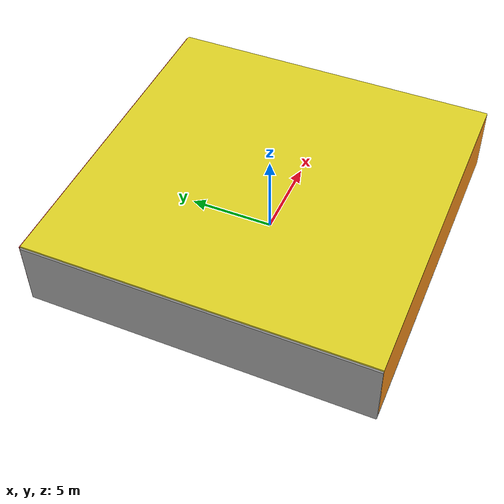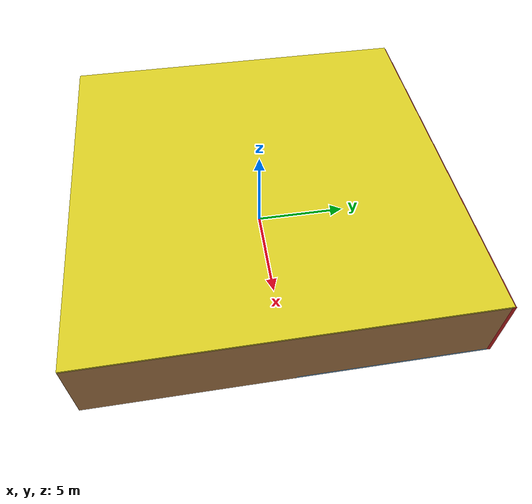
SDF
<sdf version="1.4">
 <world name="default">
  <physics type="ode">
   <max_step_size>0.001</max_step_size>
   <real_time_factor>1</real_time_factor>
   <real_time_update_rate>1000</real_time_update_rate>
   <gravity>0 0 -9.8</gravity>
  </physics>
  <scene><ambient>0.4 0.4 0.4 1</ambient><background>0.7 0.7 0.7 1</background><shadows>1</shadows></scene>
  <model name="Surrounding">
   <static>1</static>
   <link name="Ceiling">
    <collision name="Ceiling_Collision"><geometry><box><size>20 20 0.1</size></box></geometry></collision>
    <visual name="Ceiling_Visual">
     <geometry><box><size>20 20 0.1</size></box></geometry>
     <material>
      <script><uri>file://media/materials/scripts/gazebo.material</uri><name>Gazebo/YellowGlow</name></script>
     </material>
    </visual>
    <pose>0 0 4.05 0 0 0</pose>
   </link>
   <link name="Wall_South">
    <collision name="Wall_South_Collision">
     <geometry><box><size>20 0 4</size></box></geometry>
     <pose>0 0 2 0 -0 0</pose>
    </collision>
    <visual name="Wall_South_Visual">
     <pose>0 0 2 0 -0 0</pose>
     <geometry><box><size>20 0 4</size></box></geometry>
     <material>
      <script><uri>file://media/materials/scripts/gazebo.material</uri><name>Gazebo/Orange</name></script>
     </material>
    </visual>
    <velocity_decay><linear>0</linear><angular>0</angular></velocity_decay>
    <pose>0 -10 0 0 -0 0</pose>
   </link>
   <link name="Wall_East">
    <collision name="Wall_21_Collision">
     <geometry><box><size>20 0 4</size></box></geometry>
     <pose>0 0 2 0 -0 0</pose>
    </collision>
    <visual name="Wall_21_Visual">
     <pose>0 0 2 0 -0 0</pose>
     <geometry><box><size>20 0 4</size></box></geometry>
     <material>
      <script><uri>file://media/materials/scripts/gazebo.material</uri><name>Gazebo/WoodFloor</name></script>
     </material>
    </visual>
    <velocity_decay><linear>0</linear><angular>0</angular></velocity_decay>
    <pose>10 0 0 0 -0 1.5708</pose>
   </link>
   <link name="Wall_North">
    <collision name="Wall_22_Collision">
     <geometry><box><size>20 0.2 4</size></box></geometry>
     <pose>0 0 2 0 -0 0</pose>
    </collision>
    <visual name="Wall_22_Visual">
     <pose>0 0 2 0 -0 0</pose>
     <geometry><box><size>20 0.2 4</size></box></geometry>
     <material>
      <script><uri>file://media/materials/scripts/gazebo.material</uri><name>Gazebo/Red</name></script>
     </material>
    </visual>
    <velocity_decay><linear>0</linear><angular>0</angular></velocity_decay>
    <pose>0 10 0 0 -0 0</pose>
   </link>
   <link name="Wall_West">
    <collision name="Wall_23_Collision">
     <geometry><box><size>20 0.2 4</size></box></geometry>
     <pose>0 0 2 0 -0 0</pose>
    </collision>
    <visual name="Wall_23_Visual">
     <pose>0 0 2 0 -0 0</pose>
     <geometry><box><size>20 0.2 4</size></box></geometry>
     <material>
      <script><uri>file://media/materials/scripts/gazebo.material</uri><name>Gazebo/GreyGradientSky</name></script>
     </material>
    </visual>
    <velocity_decay><linear>0</linear><angular>0</angular></velocity_decay>
    <pose>-10 0 0 0 0 -1.5708</pose>
   </link>
   <link name="Ground_link">
    <collision name="collision">
     <pose>0 0 .05 0 -0 0</pose>
     <geometry><box><size>20 20 0.1</size></box></geometry>
    </collision>
    <visual name="visual">
     <pose>0 0 .05 0 -0 0</pose>
     <geometry><box><size>20 20 0.1</size></box></geometry>
     <material>
      <script><uri>file://media/materials/scripts/gazebo.material</uri><name>Gazebo/SkyBlue</name></script>
     </material>
    </visual>
   </link>
   <static>1</static>
  </model>
  <spherical_coordinates>
   <surface_model>EARTH_WGS84</surface_model>
   <latitude_deg>0</latitude_deg>
   <longitude_deg>0</longitude_deg>
   <elevation>0</elevation>
   <heading_deg>0</heading_deg>
  </spherical_coordinates>
  <light name="lightball_0" type="diffuse">
   <diffuse>0.8 0.8 0.8 1</diffuse>
   <specular>0.2 0.2 0.2 1</specular>
   <attenuation>
    <range>100</range>
    <constant>0.7</constant>
    <linear>0.01</linear>
    <quadratic>0.001</quadratic>
   </attenuation>
   <direction>-0.5 0.1 -0.9</direction>
   <pose>-3.09838054713 -3.72977274421 0.859042658426 0 0 0</pose>
  </light>
  <light name="lightball_1" type="diffuse">
   <diffuse>0.8 0.8 0.8 1</diffuse>
   <specular>0.2 0.2 0.2 1</specular>
   <attenuation>
    <range>100</range>
    <constant>0.7</constant>
    <linear>0.01</linear>
    <quadratic>0.001</quadratic>
   </attenuation>
   <direction>-0.5 0.1 -0.9</direction>
   <pose>2.91424801484 0.994192261944 0.748057723964 0 0 0</pose>
  </light>
  <light name="lightball_2" type="diffuse">
   <diffuse>0.8 0.8 0.8 1</diffuse>
   <specular>0.2 0.2 0.2 1</specular>
   <attenuation>
    <range>100</range>
    <constant>0.7</constant>
    <linear>0.01</linear>
    <quadratic>0.001</quadratic>
   </attenuation>
   <direction>-0.5 0.1 -0.9</direction>
   <pose>0.276847267285 -3.18489332394 2.44066974146 0 0 0</pose>
  </light>
  <light name="lightball_3" type="diffuse">
   <diffuse>0.8 0.8 0.8 1</diffuse>
   <specular>0.2 0.2 0.2 1</specular>
   <attenuation>
    <range>100</range>
    <constant>0.7</constant>
    <linear>0.01</linear>
    <quadratic>0.001</quadratic>
   </attenuation>
   <direction>-0.5 0.1 -0.9</direction>
   <pose>-3.12578713037 1.17138321676 1.19559013922 0 0 0</pose>
  </light>
  <light name="lightball_4" type="diffuse">
   <diffuse>0.8 0.8 0.8 1</diffuse>
   <specular>0.2 0.2 0.2 1</specular>
   <attenuation>
    <range>100</range>
    <constant>0.7</constant>
    <linear>0.01</linear>
    <quadratic>0.001</quadratic>
   </attenuation>
   <direction>-0.5 0.1 -0.9</direction>
   <pose>1.58499819516 -1.23269643053 3.8293137938 0 0 0</pose>
  </light>
  <light name="lightball_5" type="diffuse">
   <diffuse>0.8 0.8 0.8 1</diffuse>
   <specular>0.2 0.2 0.2 1</specular>
   <attenuation>
    <range>100</range>
    <constant>0.7</constant>
    <linear>0.01</linear>
    <quadratic>0.001</quadratic>
   </attenuation>
   <direction>-0.5 0.1 -0.9</direction>
   <pose>-0.282826669921 -9.90295291695 1.93878273902 0 0 0</pose>
  </light>
  <light name="lightball_6" type="diffuse">
   <diffuse>0.8 0.8 0.8 1</diffuse>
   <specular>0.2 0.2 0.2 1</specular>
   <attenuation>
    <range>100</range>
    <constant>0.7</constant>
    <linear>0.01</linear>
    <quadratic>0.001</quadratic>
   </attenuation>
   <direction>-0.5 0.1 -0.9</direction>
   <pose>-9.30530029964 -6.97297617398 1.06115439772 0 0 0</pose>
  </light>
  <include>
   <uri>model://construction_cone</uri>
   <pose>-4.73400810142 8.28601109085 0 0 0 2.33868686215</pose>
  </include>
  <include>
   <uri>model://robocup_3Dsim_goal</uri>
   <pose>3.84387734764 7.03878534557 0 0 0 0.640148621313</pose>
  </include>
 </world>
</sdf>

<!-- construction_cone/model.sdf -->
<sdf version="1.5">
  <model name="Construction Cone">
    <link name="link">
      <collision name="collision">
        <geometry>
          <mesh>
            <scale>10 10 10</scale>
            <uri>file://isr-testbed/construction_cone/meshes/construction_cone.dae</uri>
          </mesh>
        </geometry>
      </collision>
      <visual name="visual">
        <geometry>
          <mesh>
            <scale>10 10 10</scale>
            <uri>file://isr-testbed/construction_cone/meshes/construction_cone.dae</uri>
          </mesh>
        </geometry>
      </visual>
    </link>
  </model>
</sdf>

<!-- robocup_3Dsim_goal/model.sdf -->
<sdf version="1.5">
  <model name="robocup_3d_goal">
    <static>true</static>
    <link name="left_post">
      <pose>0 1.05 0.45 0 0 0</pose>
      <collision name="collision">
        <geometry>
          <cylinder>
            <radius>0.05</radius>
            <length>0.9</length>
          </cylinder>
        </geometry>
      </collision>
      <visual name="visual">
        <geometry>
          <cylinder>
            <radius>0.05</radius>
            <length>0.9</length>
          </cylinder>
        </geometry>
        <material>
          <script>
            <uri>file://media/materials/scripts/gazebo.material</uri>
            <name>Gazebo/ZincYellow</name>
          </script>
        </material>
      </visual>
    </link>
    <link name="left_support_horiz_lower">
      <pose>0.30 1.05 0.01 0 0 0</pose>
      <collision name="collision">
        <geometry>
          <box>
            <size>0.50 0.02 0.02</size>
          </box>
        </geometry>
      </collision>
      <visual name="visual">
        <geometry>
          <box>
            <size>0.50 0.02 0.02</size>
          </box>
        </geometry>
        <material>
          <script>
            <uri>file://media/materials/scripts/gazebo.material</uri>
            <name>Gazebo/White</name>
          </script>
        </material>
      </visual>
    </link>
    <link name="left_support_horiz_upper">
      <pose>0.30 1.05 0.79 0 0 0</pose>
      <collision name="collision">
        <geometry>
          <box>
            <size>0.50 0.02 0.02</size>
          </box>
        </geometry>
      </collision>
      <visual name="visual">
        <geometry>
          <box>
            <size>0.50 0.02 0.02</size>
          </box>
        </geometry>
        <material>
          <script>
            <uri>file://media/materials/scripts/gazebo.material</uri>
            <name>Gazebo/White</name>
          </script>
        </material>
      </visual>
    </link>
    <link name="left_support_vertical">
      <pose>0.56 1.05 0.4 0 1.5708 0</pose>
      <collision name="collision">
        <geometry>
          <box>
            <size>0.80 0.02 0.02</size>
          </box>
        </geometry>
      </collision>
      <visual name="visual">
        <geometry>
          <box>
            <size>0.80 0.02 0.02</size>
          </box>
        </geometry>
        <material>
          <script>
            <uri>file://media/materials/scripts/gazebo.material</uri>
            <name>Gazebo/White</name>
          </script>
        </material>
      </visual>
    </link>
    <link name="right_support_horiz_lower">
      <pose>0.30 -1.05 0.01 0 0 0</pose>
      <collision name="collision">
        <geometry>
          <box>
            <size>0.50 0.02 0.02</size>
          </box>
        </geometry>
      </collision>
      <visual name="visual">
        <geometry>
          <box>
            <size>0.50 0.02 0.02</size>
          </box>
        </geometry>
        <material>
          <script>
            <uri>file://media/materials/scripts/gazebo.material</uri>
            <name>Gazebo/White</name>
          </script>
        </material>
      </visual>
    </link>
    <link name="right_support_horiz_upper">
      <pose>0.30 -1.05 0.79 0 0 0</pose>
      <collision name="collision">
        <geometry>
          <box>
            <size>0.50 0.02 0.02</size>
          </box>
        </geometry>
      </collision>
      <visual name="visual">
        <geometry>
          <box>
            <size>0.50 0.02 0.02</size>
          </box>
        </geometry>
        <material>
          <script>
            <uri>file://media/materials/scripts/gazebo.material</uri>
            <name>Gazebo/White</name>
          </script>
        </material>
      </visual>
    </link>
    <link name="right_support_vertical">
      <pose>0.56 -1.05 0.4 0 1.5708 0</pose>
      <collision name="collision">
        <geometry>
          <box>
            <size>0.80 0.02 0.02</size>
          </box>
        </geometry>
      </collision>
      <visual name="visual">
        <geometry>
          <box>
            <size>0.80 0.02 0.02</size>
          </box>
        </geometry>
        <material>
          <script>
            <uri>file://media/materials/scripts/gazebo.material</uri>
            <name>Gazebo/White</name>
          </script>
        </material>
      </visual>
    </link>
    <link name="center_support_horiz_lower">
      <pose>0.56 0 0.01 0 1.5708 0</pose>
      <collision name="collision">
        <geometry>
          <box>
            <size>0.02 2.08 0.02</size>
          </box>
        </geometry>
      </collision>
      <visual name="visual">
        <geometry>
          <box>
            <size>0.02 2.08 0.02</size>
          </box>
        </geometry>
        <material>
          <script>
            <uri>file://media/materials/scripts/gazebo.material</uri>
            <name>Gazebo/White</name>
          </script>
        </material>
      </visual>
    </link>
    <link name="center_support_horiz_upper">
      <pose>0.56 0 0.79 0 1.5708 0</pose>
      <collision name="collision">
        <geometry>
          <box>
            <size>0.02 2.08 0.02</size>
          </box>
        </geometry>
      </collision>
      <visual name="visual">
        <geometry>
          <box>
            <size>0.02 2.08 0.02</size>
          </box>
        </geometry>
        <material>
          <script>
            <uri>file://media/materials/scripts/gazebo.material</uri>
            <name>Gazebo/White</name>
          </script>
        </material>
      </visual>
    </link>
    <link name="right_post">
      <pose>0 -1.05 0.45 0 0 0</pose>
      <collision name="collision">
        <geometry>
          <cylinder>
            <radius>0.05</radius>
            <length>0.9</length>
          </cylinder>
        </geometry>
      </collision>
      <visual name="visual">
        <geometry>
          <cylinder>
            <radius>0.05</radius>
            <length>0.9</length>
          </cylinder>
        </geometry>
        <material>
          <script>
            <uri>file://media/materials/scripts/gazebo.material</uri>
            <name>Gazebo/ZincYellow</name>
          </script>
        </material>
      </visual>
    </link>
    <link name="crossbar">
      <pose>0 0 0.85 1.57 1.57 0</pose>
      <collision name="collision">
        <geometry>
          <cylinder>
            <radius>0.05</radius>
            <length>2.0</length>
          </cylinder>
        </geometry>
      </collision>
      <visual name="visual">
        <geometry>
          <cylinder>
            <radius>0.05</radius>
            <length>2.0</length>
          </cylinder>
        </geometry>
        <material>
          <script>
            <uri>file://media/materials/scripts/gazebo.material</uri>
            <name>Gazebo/ZincYellow</name>
          </script>
        </material>
      </visual>
    </link>
    <link name="center_net">
      <pose>0.56 0 0.40 0 0 0</pose>
      <collision name="collision">
        <geometry>
          <box>
            <size>0.01 2.1 0.80</size>
          </box>
        </geometry>
      </collision>
      <visual name="visual">
        <geometry>
          <box>
            <size>0.01 2.1 0.80</size>
          </box>
        </geometry>
        <material>
          <script>
            <uri>model://../model_source/models/robocup09_spl_field/materials/scripts/</uri>
            <uri>model://../model_source/models/robocup09_spl_field/materials/textures/</uri>
            <name>RoboCup/Net</name>
          </script>
        </material>
      </visual>
    </link>
    <link name="left_net">
      <pose>0.30 1.05 0.40 0 0 0</pose>
      <collision name="collision">
        <geometry>
          <box>
            <size>0.50 0.01 0.76</size>
          </box>
        </geometry>
      </collision>
      <visual name="visual">
        <geometry>
          <box>
            <size>0.50 0.01 0.76</size>
          </box>
        </geometry>
        <material>
          <script>
            <uri>model://../model_source/models/robocup09_spl_field/materials/scripts/</uri>
            <uri>model://../model_source/models/robocup09_spl_field/materials/textures/</uri>
            <name>RoboCup/Net</name>
          </script>
        </material>
      </visual>
    </link>
    <link name="right_net">
      <pose>0.30 -1.05 0.40 0 0 0</pose>
      <collision name="collision">
        <geometry>
          <box>
            <size>0.50 0.01 0.76</size>
          </box>
        </geometry>
      </collision>
      <visual name="visual">
        <geometry>
          <box>
            <size>0.50 0.01 0.76</size>
          </box>
        </geometry>
        <material>
          <script>
            <uri>model://../model_source/models/robocup09_spl_field/materials/scripts/</uri>
            <uri>model://../model_source/models/robocup09_spl_field/materials/textures/</uri>
            <name>RoboCup/Net</name>
          </script>
        </material>
      </visual>
    </link>
  </model>
</sdf>
